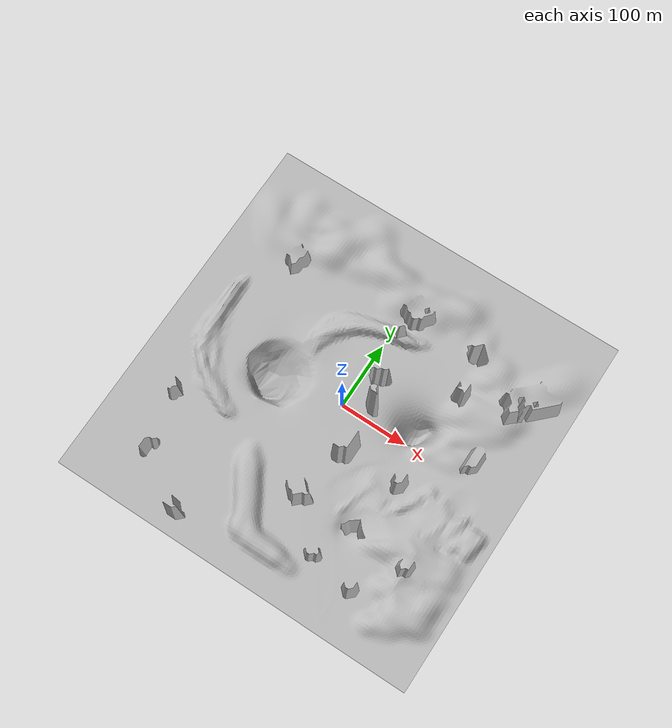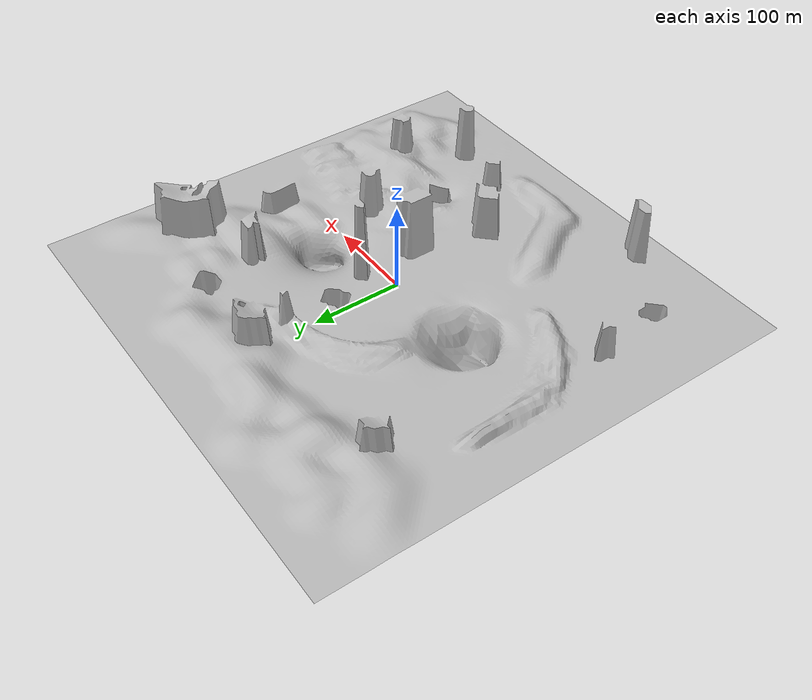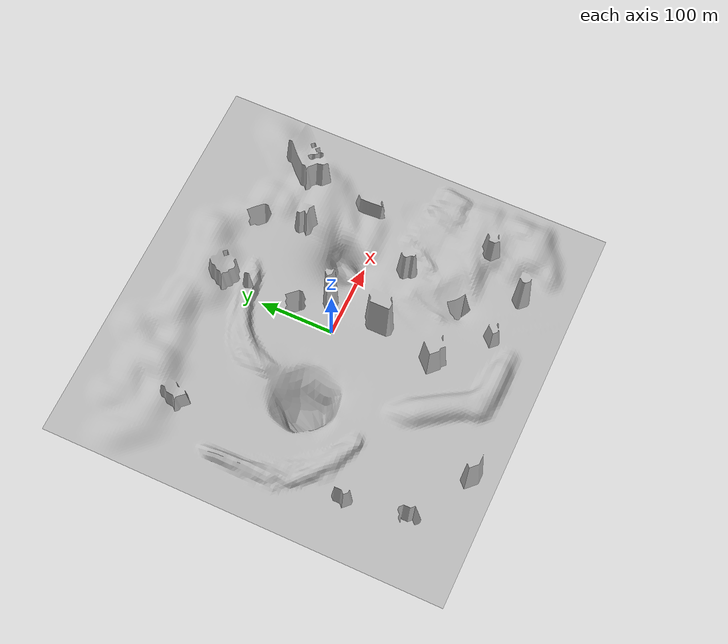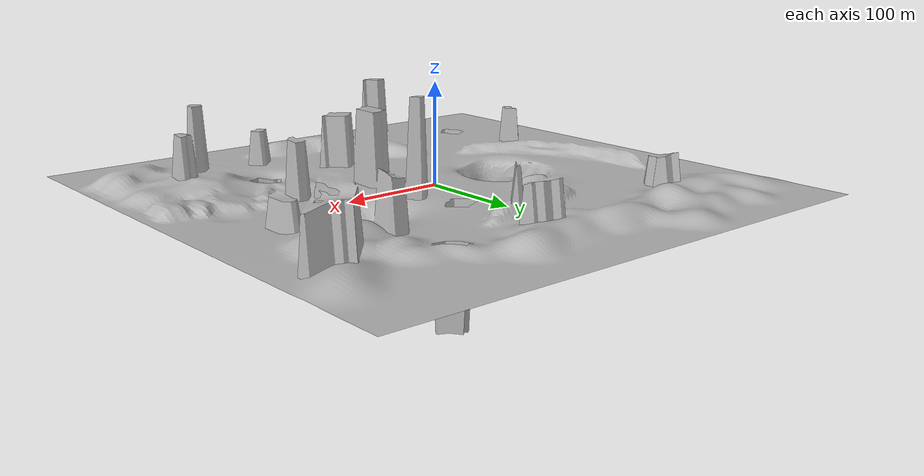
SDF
<?xml version="1.0" ?>
<sdf version="1.5">
  <model name="mountain_1">
    <pose>0 0 0 0 0 0</pose>
    <static>true</static>
    <link name="body">
      <visual name="visual">
        <geometry>
          <mesh><uri>media/mountain1.dae</uri></mesh>
        </geometry>
	<material>
          <script>
            <uri>media/scripts</uri>
            <uri>media/Textures</uri>
            <name>RepeatedGrass/Diffuse</name>
          </script>
        </material>
      </visual>
      <collision name="collision">
        <geometry>
          <mesh><uri>media/mountain1.dae</uri></mesh>
        </geometry>
      </collision>
    </link>
  </model>
</sdf>
